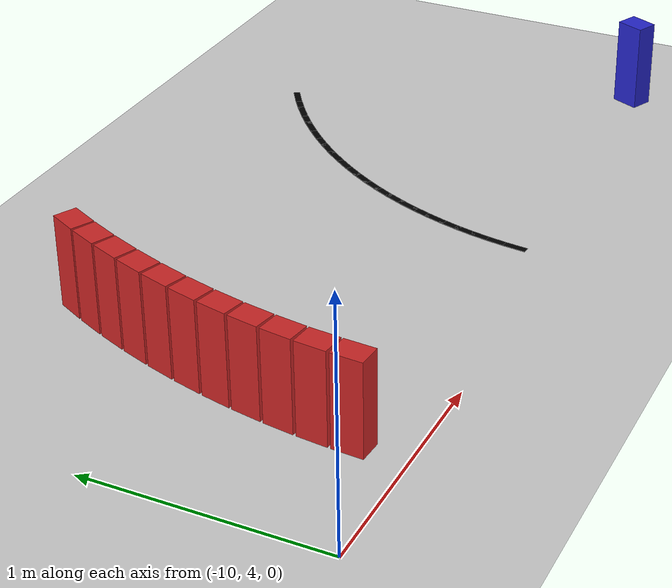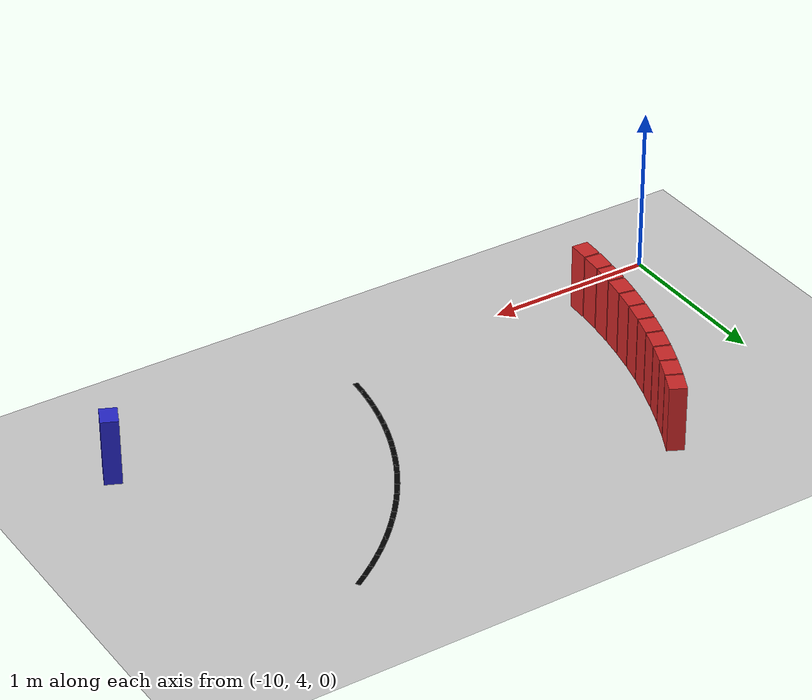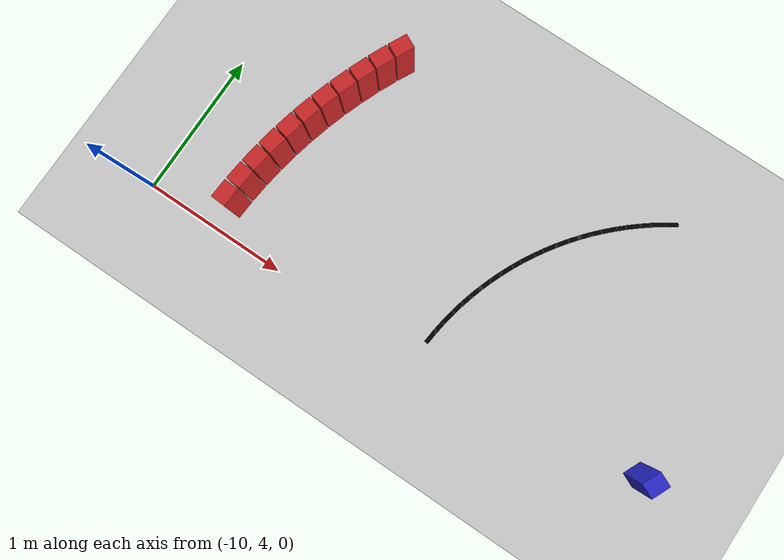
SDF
<sdf version="1.6">
 <world name="new_race_track">
  <include><uri>model://ground_plane</uri></include>
  <include><uri>model://sun</uri></include>
  <model name="race_track">
   <static>true</static>
   <link name="wall_link_400">
    <collision name="c"><geometry><box><size>0.1305 0.1 0.4</size></box></geometry></collision>
    <visual name="v">
     <geometry><box><size>0.1305 0.1 0.4</size></box></geometry>
     <material><ambient>0.15 0.15 0.8 1</ambient><diffuse>0.15 0.15 0.8 1</diffuse></material>
    </visual>
    <pose>-6.4177 4.2050 0.200 0 0 -1.9937</pose>
   </link>
   <link name="wall_link_811">
    <collision name="c"><geometry><box><size>0.1305 0.1 0.4</size></box></geometry></collision>
    <visual name="v">
     <geometry><box><size>0.1305 0.1 0.4</size></box></geometry>
     <material><ambient>0.8 0.15 0.15 1</ambient><diffuse>0.8 0.15 0.15 1</diffuse></material>
    </visual>
    <pose>-9.0929 5.5636 0.200 0 0 -2.0340</pose>
   </link>
   <link name="wall_link_812">
    <collision name="c"><geometry><box><size>0.1305 0.1 0.4</size></box></geometry></collision>
    <visual name="v">
     <geometry><box><size>0.1305 0.1 0.4</size></box></geometry>
     <material><ambient>0.8 0.15 0.15 1</ambient><diffuse>0.8 0.15 0.15 1</diffuse></material>
    </visual>
    <pose>-9.1534 5.4363 0.200 0 0 -1.9937</pose>
   </link>
   <link name="wall_link_813">
    <collision name="c"><geometry><box><size>0.1305 0.1 0.4</size></box></geometry></collision>
    <visual name="v">
     <geometry><box><size>0.1305 0.1 0.4</size></box></geometry>
     <material><ambient>0.8 0.15 0.15 1</ambient><diffuse>0.8 0.15 0.15 1</diffuse></material>
    </visual>
    <pose>-9.2086 5.3066 0.200 0 0 -1.9534</pose>
   </link>
   <link name="wall_link_814">
    <collision name="c"><geometry><box><size>0.1305 0.1 0.4</size></box></geometry></collision>
    <visual name="v">
     <geometry><box><size>0.1305 0.1 0.4</size></box></geometry>
     <material><ambient>0.8 0.15 0.15 1</ambient><diffuse>0.8 0.15 0.15 1</diffuse></material>
    </visual>
    <pose>-9.2586 5.1748 0.200 0 0 -1.9131</pose>
   </link>
   <link name="wall_link_815">
    <collision name="c"><geometry><box><size>0.1305 0.1 0.4</size></box></geometry></collision>
    <visual name="v">
     <geometry><box><size>0.1305 0.1 0.4</size></box></geometry>
     <material><ambient>0.8 0.15 0.15 1</ambient><diffuse>0.8 0.15 0.15 1</diffuse></material>
    </visual>
    <pose>-9.3032 5.0411 0.200 0 0 -1.8729</pose>
   </link>
   <link name="wall_link_816">
    <collision name="c"><geometry><box><size>0.1305 0.1 0.4</size></box></geometry></collision>
    <visual name="v">
     <geometry><box><size>0.1305 0.1 0.4</size></box></geometry>
     <material><ambient>0.8 0.15 0.15 1</ambient><diffuse>0.8 0.15 0.15 1</diffuse></material>
    </visual>
    <pose>-9.3424 4.9058 0.200 0 0 -1.8326</pose>
   </link>
   <link name="wall_link_817">
    <collision name="c"><geometry><box><size>0.1305 0.1 0.4</size></box></geometry></collision>
    <visual name="v">
     <geometry><box><size>0.1305 0.1 0.4</size></box></geometry>
     <material><ambient>0.8 0.15 0.15 1</ambient><diffuse>0.8 0.15 0.15 1</diffuse></material>
    </visual>
    <pose>-9.3762 4.7689 0.200 0 0 -1.7923</pose>
   </link>
   <link name="wall_link_818">
    <collision name="c"><geometry><box><size>0.1305 0.1 0.4</size></box></geometry></collision>
    <visual name="v">
     <geometry><box><size>0.1305 0.1 0.4</size></box></geometry>
     <material><ambient>0.8 0.15 0.15 1</ambient><diffuse>0.8 0.15 0.15 1</diffuse></material>
    </visual>
    <pose>-9.4043 4.6308 0.200 0 0 -1.7520</pose>
   </link>
   <link name="wall_link_819">
    <collision name="c"><geometry><box><size>0.1305 0.1 0.4</size></box></geometry></collision>
    <visual name="v">
     <geometry><box><size>0.1305 0.1 0.4</size></box></geometry>
     <material><ambient>0.8 0.15 0.15 1</ambient><diffuse>0.8 0.15 0.15 1</diffuse></material>
    </visual>
    <pose>-9.4270 4.4917 0.200 0 0 -1.7118</pose>
   </link>
   <link name="wall_link_820">
    <collision name="c"><geometry><box><size>0.1305 0.1 0.4</size></box></geometry></collision>
    <visual name="v">
     <geometry><box><size>0.1305 0.1 0.4</size></box></geometry>
     <material><ambient>0.8 0.15 0.15 1</ambient><diffuse>0.8 0.15 0.15 1</diffuse></material>
    </visual>
    <pose>-9.4439 4.3518 0.200 0 0 -1.6715</pose>
   </link>
   <link name="wall_link_821">
    <collision name="c"><geometry><box><size>0.1305 0.1 0.4</size></box></geometry></collision>
    <visual name="v">
     <geometry><box><size>0.1305 0.1 0.4</size></box></geometry>
     <material><ambient>0.8 0.15 0.15 1</ambient><diffuse>0.8 0.15 0.15 1</diffuse></material>
    </visual>
    <pose>-9.4553 4.2113 0.200 0 0 -1.6312</pose>
   </link>
   <link name="line_link_1532">
    <visual name="v">
     <geometry><box><size>0.1005 0.03 0.002</size></box></geometry>
     <material><ambient>0 0 0 1</ambient><diffuse>0 0 0 1</diffuse></material>
    </visual>
    <pose>-7.0646 5.6682 0.002 0 0 -2.5576</pose>
   </link>
   <link name="line_link_1533">
    <visual name="v">
     <geometry><box><size>0.1005 0.03 0.002</size></box></geometry>
     <material><ambient>0 0 0 1</ambient><diffuse>0 0 0 1</diffuse></material>
    </visual>
    <pose>-7.1309 5.6224 0.002 0 0 -2.5173</pose>
   </link>
   <link name="line_link_1534">
    <visual name="v">
     <geometry><box><size>0.1005 0.03 0.002</size></box></geometry>
     <material><ambient>0 0 0 1</ambient><diffuse>0 0 0 1</diffuse></material>
    </visual>
    <pose>-7.1953 5.5740 0.002 0 0 -2.4770</pose>
   </link>
   <link name="line_link_1535">
    <visual name="v">
     <geometry><box><size>0.1005 0.03 0.002</size></box></geometry>
     <material><ambient>0 0 0 1</ambient><diffuse>0 0 0 1</diffuse></material>
    </visual>
    <pose>-7.2576 5.5231 0.002 0 0 -2.4367</pose>
   </link>
   <link name="line_link_1536">
    <visual name="v">
     <geometry><box><size>0.1005 0.03 0.002</size></box></geometry>
     <material><ambient>0 0 0 1</ambient><diffuse>0 0 0 1</diffuse></material>
    </visual>
    <pose>-7.3179 5.4697 0.002 0 0 -2.3965</pose>
   </link>
   <link name="line_link_1537">
    <visual name="v">
     <geometry><box><size>0.1005 0.03 0.002</size></box></geometry>
     <material><ambient>0 0 0 1</ambient><diffuse>0 0 0 1</diffuse></material>
    </visual>
    <pose>-7.3760 5.4139 0.002 0 0 -2.3562</pose>
   </link>
   <link name="line_link_1538">
    <visual name="v">
     <geometry><box><size>0.1005 0.03 0.002</size></box></geometry>
     <material><ambient>0 0 0 1</ambient><diffuse>0 0 0 1</diffuse></material>
    </visual>
    <pose>-7.4318 5.3558 0.002 0 0 -2.3159</pose>
   </link>
   <link name="line_link_1539">
    <visual name="v">
     <geometry><box><size>0.1005 0.03 0.002</size></box></geometry>
     <material><ambient>0 0 0 1</ambient><diffuse>0 0 0 1</diffuse></material>
    </visual>
    <pose>-7.4852 5.2956 0.002 0 0 -2.2756</pose>
   </link>
   <link name="line_link_1540">
    <visual name="v">
     <geometry><box><size>0.1005 0.03 0.002</size></box></geometry>
     <material><ambient>0 0 0 1</ambient><diffuse>0 0 0 1</diffuse></material>
    </visual>
    <pose>-7.5361 5.2332 0.002 0 0 -2.2354</pose>
   </link>
   <link name="line_link_1541">
    <visual name="v">
     <geometry><box><size>0.1005 0.03 0.002</size></box></geometry>
     <material><ambient>0 0 0 1</ambient><diffuse>0 0 0 1</diffuse></material>
    </visual>
    <pose>-7.5845 5.1688 0.002 0 0 -2.1951</pose>
   </link>
   <link name="line_link_1542">
    <visual name="v">
     <geometry><box><size>0.1005 0.03 0.002</size></box></geometry>
     <material><ambient>0 0 0 1</ambient><diffuse>0 0 0 1</diffuse></material>
    </visual>
    <pose>-7.6302 5.1025 0.002 0 0 -2.1548</pose>
   </link>
   <link name="line_link_1543">
    <visual name="v">
     <geometry><box><size>0.1005 0.03 0.002</size></box></geometry>
     <material><ambient>0 0 0 1</ambient><diffuse>0 0 0 1</diffuse></material>
    </visual>
    <pose>-7.6733 5.0345 0.002 0 0 -2.1145</pose>
   </link>
   <link name="line_link_1544">
    <visual name="v">
     <geometry><box><size>0.1005 0.03 0.002</size></box></geometry>
     <material><ambient>0 0 0 1</ambient><diffuse>0 0 0 1</diffuse></material>
    </visual>
    <pose>-7.7136 4.9647 0.002 0 0 -2.0743</pose>
   </link>
   <link name="line_link_1545">
    <visual name="v">
     <geometry><box><size>0.1005 0.03 0.002</size></box></geometry>
     <material><ambient>0 0 0 1</ambient><diffuse>0 0 0 1</diffuse></material>
    </visual>
    <pose>-7.7510 4.8934 0.002 0 0 -2.0340</pose>
   </link>
   <link name="line_link_1546">
    <visual name="v">
     <geometry><box><size>0.1005 0.03 0.002</size></box></geometry>
     <material><ambient>0 0 0 1</ambient><diffuse>0 0 0 1</diffuse></material>
    </visual>
    <pose>-7.7855 4.8207 0.002 0 0 -1.9937</pose>
   </link>
   <link name="line_link_1547">
    <visual name="v">
     <geometry><box><size>0.1005 0.03 0.002</size></box></geometry>
     <material><ambient>0 0 0 1</ambient><diffuse>0 0 0 1</diffuse></material>
    </visual>
    <pose>-7.8171 4.7466 0.002 0 0 -1.9534</pose>
   </link>
   <link name="line_link_1548">
    <visual name="v">
     <geometry><box><size>0.1005 0.03 0.002</size></box></geometry>
     <material><ambient>0 0 0 1</ambient><diffuse>0 0 0 1</diffuse></material>
    </visual>
    <pose>-7.8456 4.6713 0.002 0 0 -1.9131</pose>
   </link>
   <link name="line_link_1549">
    <visual name="v">
     <geometry><box><size>0.1005 0.03 0.002</size></box></geometry>
     <material><ambient>0 0 0 1</ambient><diffuse>0 0 0 1</diffuse></material>
    </visual>
    <pose>-7.8711 4.5949 0.002 0 0 -1.8729</pose>
   </link>
   <link name="line_link_1550">
    <visual name="v">
     <geometry><box><size>0.1005 0.03 0.002</size></box></geometry>
     <material><ambient>0 0 0 1</ambient><diffuse>0 0 0 1</diffuse></material>
    </visual>
    <pose>-7.8935 4.5175 0.002 0 0 -1.8326</pose>
   </link>
   <link name="line_link_1551">
    <visual name="v">
     <geometry><box><size>0.1005 0.03 0.002</size></box></geometry>
     <material><ambient>0 0 0 1</ambient><diffuse>0 0 0 1</diffuse></material>
    </visual>
    <pose>-7.9128 4.4393 0.002 0 0 -1.7923</pose>
   </link>
   <link name="line_link_1552">
    <visual name="v">
     <geometry><box><size>0.1005 0.03 0.002</size></box></geometry>
     <material><ambient>0 0 0 1</ambient><diffuse>0 0 0 1</diffuse></material>
    </visual>
    <pose>-7.9289 4.3604 0.002 0 0 -1.7520</pose>
   </link>
   <link name="line_link_1553">
    <visual name="v">
     <geometry><box><size>0.1005 0.03 0.002</size></box></geometry>
     <material><ambient>0 0 0 1</ambient><diffuse>0 0 0 1</diffuse></material>
    </visual>
    <pose>-7.9418 4.2809 0.002 0 0 -1.7118</pose>
   </link>
   <link name="line_link_1554">
    <visual name="v">
     <geometry><box><size>0.1005 0.03 0.002</size></box></geometry>
     <material><ambient>0 0 0 1</ambient><diffuse>0 0 0 1</diffuse></material>
    </visual>
    <pose>-7.9515 4.2010 0.002 0 0 -1.6715</pose>
   </link>
  </model>
 </world>
</sdf>
